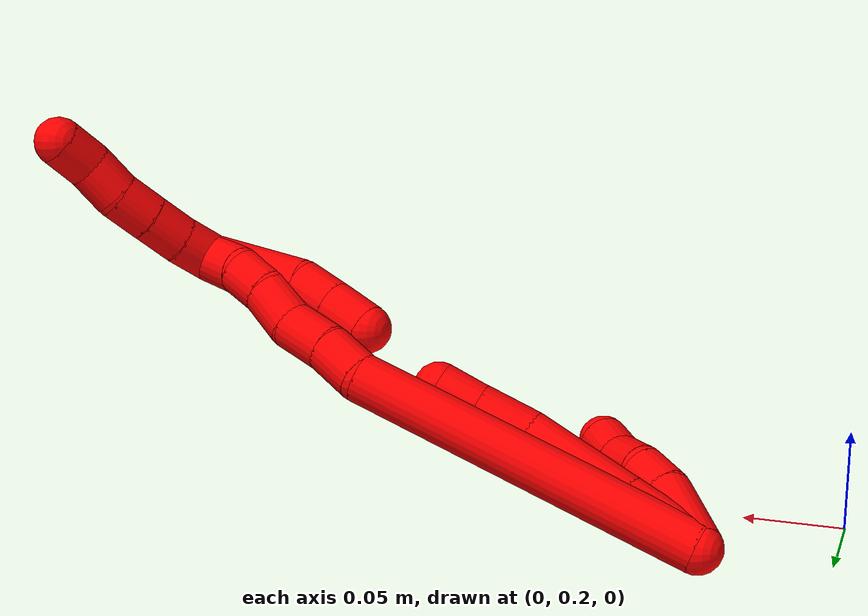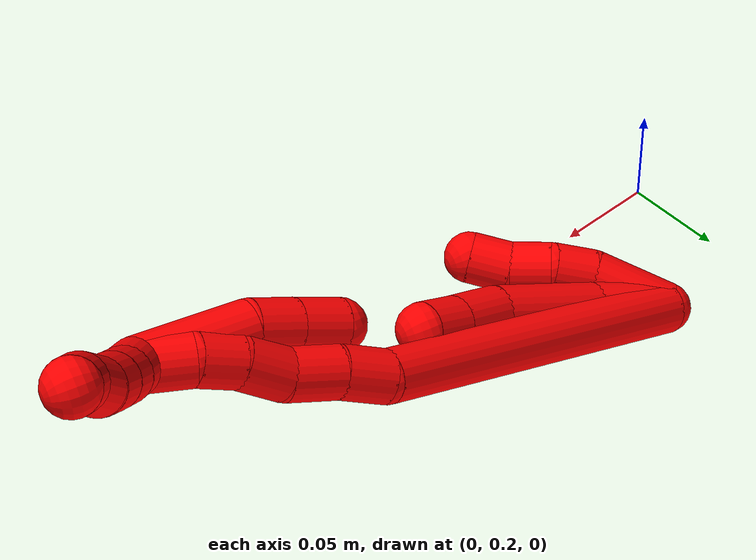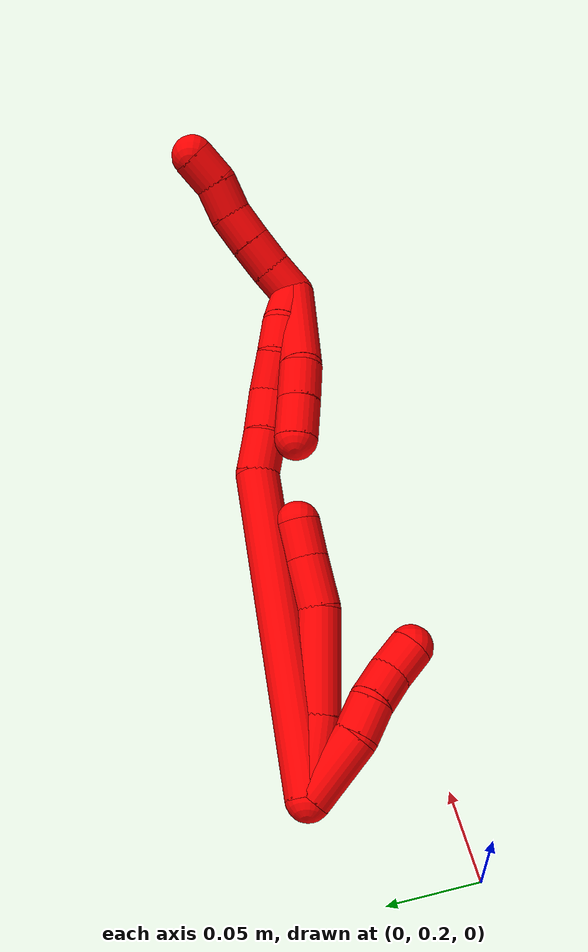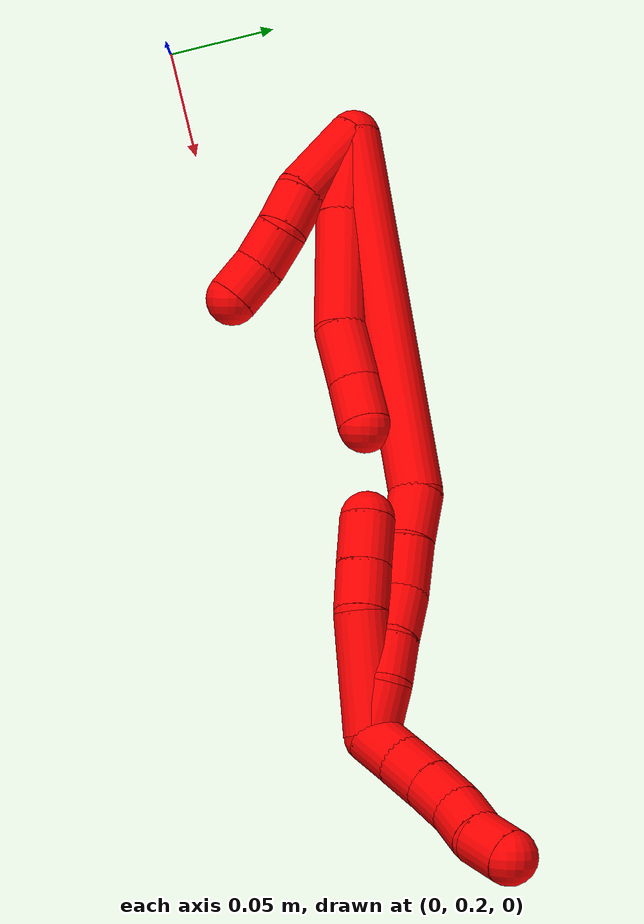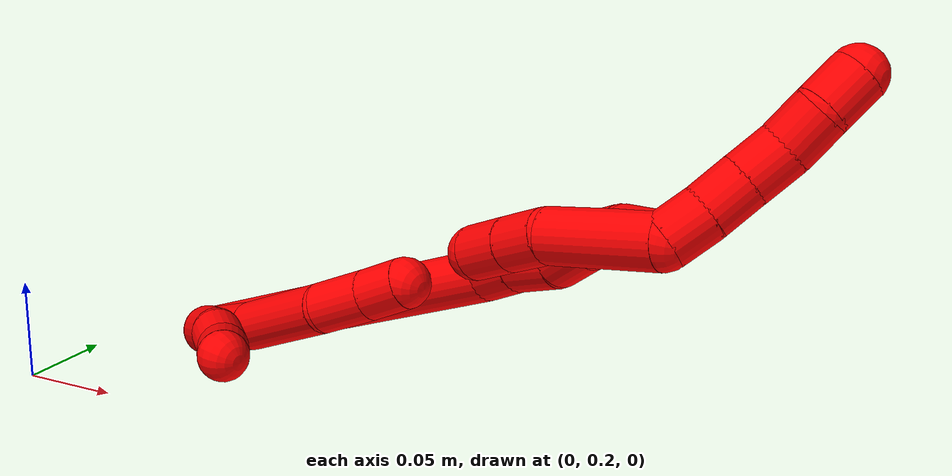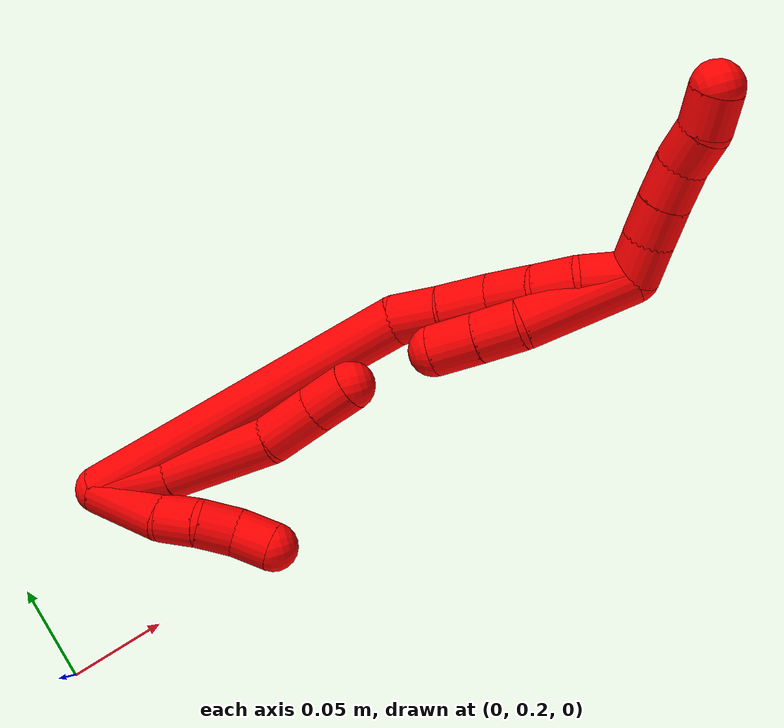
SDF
<sdf version="1.7">
 <world name="default">
  <model name="2">
   <static>0</static>
   <link name="2">
    <collision name="collision-cylinder-e_1_2_8">
     <pose>-0.005489 -0.0058 -0.019425 2.85143 -0.264442 -1.47693</pose>
     <geometry><cylinder><radius>0.0125</radius><length>0.042005</length></cylinder></geometry>
     <surface>
      <friction><ode><mu>1.16</mu><mu2>1.16</mu2><slip1>0</slip1><slip2>0</slip2></ode></friction>
      <contact><ode><kp>1e+06</kp><kd>1</kd><max_vel>0</max_vel><min_depth>0.001</min_depth></ode></contact>
     </surface>
    </collision>
    <visual name="visual-cylinder-e_1_2_8">
     <pose>-0.005489 -0.0058 -0.019425 2.85143 -0.264442 -1.47693</pose>
     <geometry><cylinder><radius>0.0125</radius><length>0.042005</length></cylinder></geometry>
     <material><ambient>1 0 0 1</ambient></material>
    </visual>
    <collision name="collision-cylinder-e_2_8_9">
     <pose>-0.016445 -0.022745 -0.064976 2.73838 -0.190127 -0.873037</pose>
     <geometry><cylinder><radius>0.0125</radius><length>0.057849</length></cylinder></geometry>
     <surface>
      <friction><ode><mu>1.16</mu><mu2>1.16</mu2><slip1>0</slip1><slip2>0</slip2></ode></friction>
      <contact><ode><kp>1e+06</kp><kd>1</kd><max_vel>0</max_vel><min_depth>0.001</min_depth></ode></contact>
     </surface>
    </collision>
    <visual name="visual-cylinder-e_2_8_9">
     <pose>-0.016445 -0.022745 -0.064976 2.73838 -0.190127 -0.873037</pose>
     <geometry><cylinder><radius>0.0125</radius><length>0.057849</length></cylinder></geometry>
     <material><ambient>1 0 0 1</ambient></material>
    </visual>
    <collision name="collision-cylinder-e_3_9_10">
     <pose>-0.021575 -0.041021 -0.103519 2.62028 0.023511 0.088093</pose>
     <geometry><cylinder><radius>0.0125</radius><length>0.028648</length></cylinder></geometry>
     <surface>
      <friction><ode><mu>1.16</mu><mu2>1.16</mu2><slip1>0</slip1><slip2>0</slip2></ode></friction>
      <contact><ode><kp>1e+06</kp><kd>1</kd><max_vel>0</max_vel><min_depth>0.001</min_depth></ode></contact>
     </surface>
    </collision>
    <visual name="visual-cylinder-e_3_9_10">
     <pose>-0.021575 -0.041021 -0.103519 2.62028 0.023511 0.088093</pose>
     <geometry><cylinder><radius>0.0125</radius><length>0.028648</length></cylinder></geometry>
     <material><ambient>1 0 0 1</ambient></material>
    </visual>
    <collision name="collision-cylinder-e_4_10_6">
     <pose>-0.021306 -0.053628 -0.125187 2.60715 -0.006351 -0.023198</pose>
     <geometry><cylinder><radius>0.0125</radius><length>0.021497</length></cylinder></geometry>
     <surface>
      <friction><ode><mu>1.16</mu><mu2>1.16</mu2><slip1>0</slip1><slip2>0</slip2></ode></friction>
      <contact><ode><kp>1e+06</kp><kd>1</kd><max_vel>0</max_vel><min_depth>0.001</min_depth></ode></contact>
     </surface>
    </collision>
    <visual name="visual-cylinder-e_4_10_6">
     <pose>-0.021306 -0.053628 -0.125187 2.60715 -0.006351 -0.023198</pose>
     <geometry><cylinder><radius>0.0125</radius><length>0.021497</length></cylinder></geometry>
     <material><ambient>1 0 0 1</ambient></material>
    </visual>
    <collision name="collision-cylinder-e_1_2_11">
     <pose>-0.014181 -0.000981 -0.013891 3.07108 -0.794458 -2.97384</pose>
     <geometry><cylinder><radius>0.0125</radius><length>0.039751</length></cylinder></geometry>
     <surface>
      <friction><ode><mu>1.16</mu><mu2>1.16</mu2><slip1>0</slip1><slip2>0</slip2></ode></friction>
      <contact><ode><kp>1e+06</kp><kd>1</kd><max_vel>0</max_vel><min_depth>0.001</min_depth></ode></contact>
     </surface>
    </collision>
    <visual name="visual-cylinder-e_1_2_11">
     <pose>-0.014181 -0.000981 -0.013891 3.07108 -0.794458 -2.97384</pose>
     <geometry><cylinder><radius>0.0125</radius><length>0.039751</length></cylinder></geometry>
     <material><ambient>1 0 0 1</ambient></material>
    </visual>
    <collision name="collision-cylinder-e_2_11_12">
     <pose>-0.033428 -0.002728 -0.036492 3.05391 -0.525201 -2.81804</pose>
     <geometry><cylinder><radius>0.0125</radius><length>0.020209</length></cylinder></geometry>
     <surface>
      <friction><ode><mu>1.16</mu><mu2>1.16</mu2><slip1>0</slip1><slip2>0</slip2></ode></friction>
      <contact><ode><kp>1e+06</kp><kd>1</kd><max_vel>0</max_vel><min_depth>0.001</min_depth></ode></contact>
     </surface>
    </collision>
    <visual name="visual-cylinder-e_2_11_12">
     <pose>-0.033428 -0.002728 -0.036492 3.05391 -0.525201 -2.81804</pose>
     <geometry><cylinder><radius>0.0125</radius><length>0.020209</length></cylinder></geometry>
     <material><ambient>1 0 0 1</ambient></material>
    </visual>
    <collision name="collision-cylinder-e_3_12_13">
     <pose>-0.042879 -0.001208 -0.053897 -2.88464 -0.45373 2.12115</pose>
     <geometry><cylinder><radius>0.0125</radius><length>0.020007</length></cylinder></geometry>
     <surface>
      <friction><ode><mu>1.16</mu><mu2>1.16</mu2><slip1>0</slip1><slip2>0</slip2></ode></friction>
      <contact><ode><kp>1e+06</kp><kd>1</kd><max_vel>0</max_vel><min_depth>0.001</min_depth></ode></contact>
     </surface>
    </collision>
    <visual name="visual-cylinder-e_3_12_13">
     <pose>-0.042879 -0.001208 -0.053897 -2.88464 -0.45373 2.12115</pose>
     <geometry><cylinder><radius>0.0125</radius><length>0.020007</length></cylinder></geometry>
     <material><ambient>1 0 0 1</ambient></material>
    </visual>
    <collision name="collision-cylinder-e_4_13_5">
     <pose>-0.053541 0.002148 -0.070325 -3.00389 -0.67727 2.75488</pose>
     <geometry><cylinder><radius>0.0125</radius><length>0.020033</length></cylinder></geometry>
     <surface>
      <friction><ode><mu>1.16</mu><mu2>1.16</mu2><slip1>0</slip1><slip2>0</slip2></ode></friction>
      <contact><ode><kp>1e+06</kp><kd>1</kd><max_vel>0</max_vel><min_depth>0.001</min_depth></ode></contact>
     </surface>
    </collision>
    <visual name="visual-cylinder-e_4_13_5">
     <pose>-0.053541 0.002148 -0.070325 -3.00389 -0.67727 2.75488</pose>
     <geometry><cylinder><radius>0.0125</radius><length>0.020033</length></cylinder></geometry>
     <material><ambient>1 0 0 1</ambient></material>
    </visual>
    <collision name="collision-cylinder-e_1_2_14">
     <pose>-0.001774 -0.038281 -0.082206 2.70578 -0.019562 -0.088292</pose>
     <geometry><cylinder><radius>0.0125</radius><length>0.1814</length></cylinder></geometry>
     <surface>
      <friction><ode><mu>1.16</mu><mu2>1.16</mu2><slip1>0</slip1><slip2>0</slip2></ode></friction>
      <contact><ode><kp>1e+06</kp><kd>1</kd><max_vel>0</max_vel><min_depth>0.001</min_depth></ode></contact>
     </surface>
    </collision>
    <visual name="visual-cylinder-e_1_2_14">
     <pose>-0.001774 -0.038281 -0.082206 2.70578 -0.019562 -0.088292</pose>
     <geometry><cylinder><radius>0.0125</radius><length>0.1814</length></cylinder></geometry>
     <material><ambient>1 0 0 1</ambient></material>
    </visual>
    <collision name="collision-cylinder-e_2_14_15">
     <pose>-0.007729 -0.080646 -0.174975 2.77268 -0.353661 -1.52765</pose>
     <geometry><cylinder><radius>0.0125</radius><length>0.024143</length></cylinder></geometry>
     <surface>
      <friction><ode><mu>1.16</mu><mu2>1.16</mu2><slip1>0</slip1><slip2>0</slip2></ode></friction>
      <contact><ode><kp>1e+06</kp><kd>1</kd><max_vel>0</max_vel><min_depth>0.001</min_depth></ode></contact>
     </surface>
    </collision>
    <visual name="visual-cylinder-e_2_14_15">
     <pose>-0.007729 -0.080646 -0.174975 2.77268 -0.353661 -1.52765</pose>
     <geometry><cylinder><radius>0.0125</radius><length>0.024143</length></cylinder></geometry>
     <material><ambient>1 0 0 1</ambient></material>
    </visual>
    <collision name="collision-cylinder-e_3_15_16">
     <pose>-0.014977 -0.088157 -0.197464 2.8618 -0.242281 -1.42573</pose>
     <geometry><cylinder><radius>0.0125</radius><length>0.025566</length></cylinder></geometry>
     <surface>
      <friction><ode><mu>1.16</mu><mu2>1.16</mu2><slip1>0</slip1><slip2>0</slip2></ode></friction>
      <contact><ode><kp>1e+06</kp><kd>1</kd><max_vel>0</max_vel><min_depth>0.001</min_depth></ode></contact>
     </surface>
    </collision>
    <visual name="visual-cylinder-e_3_15_16">
     <pose>-0.014977 -0.088157 -0.197464 2.8618 -0.242281 -1.42573</pose>
     <geometry><cylinder><radius>0.0125</radius><length>0.025566</length></cylinder></geometry>
     <material><ambient>1 0 0 1</ambient></material>
    </visual>
    <collision name="collision-cylinder-e_4_16_17">
     <pose>-0.023163 -0.096994 -0.218737 2.61683 -0.442708 -1.39487</pose>
     <geometry><cylinder><radius>0.0125</radius><length>0.023903</length></cylinder></geometry>
     <surface>
      <friction><ode><mu>1.16</mu><mu2>1.16</mu2><slip1>0</slip1><slip2>0</slip2></ode></friction>
      <contact><ode><kp>1e+06</kp><kd>1</kd><max_vel>0</max_vel><min_depth>0.001</min_depth></ode></contact>
     </surface>
    </collision>
    <visual name="visual-cylinder-e_4_16_17">
     <pose>-0.023163 -0.096994 -0.218737 2.61683 -0.442708 -1.39487</pose>
     <geometry><cylinder><radius>0.0125</radius><length>0.023903</length></cylinder></geometry>
     <material><ambient>1 0 0 1</ambient></material>
    </visual>
    <collision name="collision-cylinder-e_5_17_18">
     <pose>-0.031471 -0.105638 -0.237318 2.80486 -0.314984 -1.50288</pose>
     <geometry><cylinder><radius>0.0125</radius><length>0.020582</length></cylinder></geometry>
     <surface>
      <friction><ode><mu>1.16</mu><mu2>1.16</mu2><slip1>0</slip1><slip2>0</slip2></ode></friction>
      <contact><ode><kp>1e+06</kp><kd>1</kd><max_vel>0</max_vel><min_depth>0.001</min_depth></ode></contact>
     </surface>
    </collision>
    <visual name="visual-cylinder-e_5_17_18">
     <pose>-0.031471 -0.105638 -0.237318 2.80486 -0.314984 -1.50288</pose>
     <geometry><cylinder><radius>0.0125</radius><length>0.020582</length></cylinder></geometry>
     <material><ambient>1 0 0 1</ambient></material>
    </visual>
    <collision name="collision-cylinder-e_6_18_1">
     <pose>-0.037796 -0.109275 -0.25834 3.10726 -0.259967 -2.88043</pose>
     <geometry><cylinder><radius>0.0125</radius><length>0.024407</length></cylinder></geometry>
     <surface>
      <friction><ode><mu>1.16</mu><mu2>1.16</mu2><slip1>0</slip1><slip2>0</slip2></ode></friction>
      <contact><ode><kp>1e+06</kp><kd>1</kd><max_vel>0</max_vel><min_depth>0.001</min_depth></ode></contact>
     </surface>
    </collision>
    <visual name="visual-cylinder-e_6_18_1">
     <pose>-0.037796 -0.109275 -0.25834 3.10726 -0.259967 -2.88043</pose>
     <geometry><cylinder><radius>0.0125</radius><length>0.024407</length></cylinder></geometry>
     <material><ambient>1 0 0 1</ambient></material>
    </visual>
    <collision name="collision-cylinder-e_1_1_19">
     <pose>-0.0413 -0.103947 -0.243217 -0.209925 -0.013348 0.001406</pose>
     <geometry><cylinder><radius>0.0125</radius><length>0.055033</length></cylinder></geometry>
     <surface>
      <friction><ode><mu>1.16</mu><mu2>1.16</mu2><slip1>0</slip1><slip2>0</slip2></ode></friction>
      <contact><ode><kp>1e+06</kp><kd>1</kd><max_vel>0</max_vel><min_depth>0.001</min_depth></ode></contact>
     </surface>
    </collision>
    <visual name="visual-cylinder-e_1_1_19">
     <pose>-0.0413 -0.103947 -0.243217 -0.209925 -0.013348 0.001406</pose>
     <geometry><cylinder><radius>0.0125</radius><length>0.055033</length></cylinder></geometry>
     <material><ambient>1 0 0 1</ambient></material>
    </visual>
    <collision name="collision-cylinder-e_2_19_20">
     <pose>-0.039297 -0.094371 -0.206308 -0.36684 0.217845 -0.040566</pose>
     <geometry><cylinder><radius>0.0125</radius><length>0.021941</length></cylinder></geometry>
     <surface>
      <friction><ode><mu>1.16</mu><mu2>1.16</mu2><slip1>0</slip1><slip2>0</slip2></ode></friction>
      <contact><ode><kp>1e+06</kp><kd>1</kd><max_vel>0</max_vel><min_depth>0.001</min_depth></ode></contact>
     </surface>
    </collision>
    <visual name="visual-cylinder-e_2_19_20">
     <pose>-0.039297 -0.094371 -0.206308 -0.36684 0.217845 -0.040566</pose>
     <geometry><cylinder><radius>0.0125</radius><length>0.021941</length></cylinder></geometry>
     <material><ambient>1 0 0 1</ambient></material>
    </visual>
    <collision name="collision-cylinder-e_3_20_4">
     <pose>-0.034213 -0.086519 -0.185864 -0.366589 0.237899 -0.044302</pose>
     <geometry><cylinder><radius>0.0125</radius><length>0.023026</length></cylinder></geometry>
     <surface>
      <friction><ode><mu>1.16</mu><mu2>1.16</mu2><slip1>0</slip1><slip2>0</slip2></ode></friction>
      <contact><ode><kp>1e+06</kp><kd>1</kd><max_vel>0</max_vel><min_depth>0.001</min_depth></ode></contact>
     </surface>
    </collision>
    <visual name="visual-cylinder-e_3_20_4">
     <pose>-0.034213 -0.086519 -0.185864 -0.366589 0.237899 -0.044302</pose>
     <geometry><cylinder><radius>0.0125</radius><length>0.023026</length></cylinder></geometry>
     <material><ambient>1 0 0 1</ambient></material>
    </visual>
    <collision name="collision-cylinder-e_1_1_21">
     <pose>-0.037753 -0.117951 -0.274761 2.08155 0.323663 0.54347</pose>
     <geometry><cylinder><radius>0.0125</radius><length>0.02</length></cylinder></geometry>
     <surface>
      <friction><ode><mu>1.16</mu><mu2>1.16</mu2><slip1>0</slip1><slip2>0</slip2></ode></friction>
      <contact><ode><kp>1e+06</kp><kd>1</kd><max_vel>0</max_vel><min_depth>0.001</min_depth></ode></contact>
     </surface>
    </collision>
    <visual name="visual-cylinder-e_1_1_21">
     <pose>-0.037753 -0.117951 -0.274761 2.08155 0.323663 0.54347</pose>
     <geometry><cylinder><radius>0.0125</radius><length>0.02</length></cylinder></geometry>
     <material><ambient>1 0 0 1</ambient></material>
    </visual>
    <collision name="collision-cylinder-e_2_21_22">
     <pose>-0.03211 -0.134892 -0.283728 2.03423 0.248844 0.399243</pose>
     <geometry><cylinder><radius>0.0125</radius><length>0.02</length></cylinder></geometry>
     <surface>
      <friction><ode><mu>1.16</mu><mu2>1.16</mu2><slip1>0</slip1><slip2>0</slip2></ode></friction>
      <contact><ode><kp>1e+06</kp><kd>1</kd><max_vel>0</max_vel><min_depth>0.001</min_depth></ode></contact>
     </surface>
    </collision>
    <visual name="visual-cylinder-e_2_21_22">
     <pose>-0.03211 -0.134892 -0.283728 2.03423 0.248844 0.399243</pose>
     <geometry><cylinder><radius>0.0125</radius><length>0.02</length></cylinder></geometry>
     <material><ambient>1 0 0 1</ambient></material>
    </visual>
    <collision name="collision-cylinder-e_3_22_23">
     <pose>-0.027397 -0.152165 -0.292634 2.05938 0.226951 0.374843</pose>
     <geometry><cylinder><radius>0.0125</radius><length>0.02</length></cylinder></geometry>
     <surface>
      <friction><ode><mu>1.16</mu><mu2>1.16</mu2><slip1>0</slip1><slip2>0</slip2></ode></friction>
      <contact><ode><kp>1e+06</kp><kd>1</kd><max_vel>0</max_vel><min_depth>0.001</min_depth></ode></contact>
     </surface>
    </collision>
    <visual name="visual-cylinder-e_3_22_23">
     <pose>-0.027397 -0.152165 -0.292634 2.05938 0.226951 0.374843</pose>
     <geometry><cylinder><radius>0.0125</radius><length>0.02</length></cylinder></geometry>
     <material><ambient>1 0 0 1</ambient></material>
    </visual>
    <collision name="collision-cylinder-e_4_23_24">
     <pose>-0.025077 -0.16965 -0.301802 2.04813 0.006953 0.011424</pose>
     <geometry><cylinder><radius>0.0125</radius><length>0.02</length></cylinder></geometry>
     <surface>
      <friction><ode><mu>1.16</mu><mu2>1.16</mu2><slip1>0</slip1><slip2>0</slip2></ode></friction>
      <contact><ode><kp>1e+06</kp><kd>1</kd><max_vel>0</max_vel><min_depth>0.001</min_depth></ode></contact>
     </surface>
    </collision>
    <visual name="visual-cylinder-e_4_23_24">
     <pose>-0.025077 -0.16965 -0.301802 2.04813 0.006953 0.011424</pose>
     <geometry><cylinder><radius>0.0125</radius><length>0.02</length></cylinder></geometry>
     <material><ambient>1 0 0 1</ambient></material>
    </visual>
    <collision name="collision-cylinder-e_5_24_3">
     <pose>-0.022382 -0.18763 -0.309611 1.91057 0.265635 0.373461</pose>
     <geometry><cylinder><radius>0.0125</radius><length>0.02</length></cylinder></geometry>
     <surface>
      <friction><ode><mu>1.16</mu><mu2>1.16</mu2><slip1>0</slip1><slip2>0</slip2></ode></friction>
      <contact><ode><kp>1e+06</kp><kd>1</kd><max_vel>0</max_vel><min_depth>0.001</min_depth></ode></contact>
     </surface>
    </collision>
    <visual name="visual-cylinder-e_5_24_3">
     <pose>-0.022382 -0.18763 -0.309611 1.91057 0.265635 0.373461</pose>
     <geometry><cylinder><radius>0.0125</radius><length>0.02</length></cylinder></geometry>
     <material><ambient>1 0 0 1</ambient></material>
    </visual>
    <collision name="collision-sphere-3">
     <pose>-0.019757 -0.196728 -0.312827 0 -0 0</pose>
     <geometry><sphere><radius>0.0125</radius></sphere></geometry>
     <surface>
      <friction><ode><mu>1.16</mu><mu2>1.16</mu2><slip1>0</slip1><slip2>0</slip2></ode></friction>
      <contact><ode><kp>1e+06</kp><kd>1</kd><max_vel>0</max_vel><min_depth>0.001</min_depth></ode></contact>
     </surface>
    </collision>
    <visual name="visual-sphere-3">
     <pose>-0.019757 -0.196728 -0.312827 0 -0 0</pose>
     <geometry><sphere><radius>0.0125</radius></sphere></geometry>
     <material><ambient>1 0 0 1</ambient></material>
    </visual>
    <collision name="collision-sphere-24">
     <pose>-0.025007 -0.178532 -0.306395 0 -0 0</pose>
     <geometry><sphere><radius>0.0125</radius></sphere></geometry>
     <surface>
      <friction><ode><mu>1.16</mu><mu2>1.16</mu2><slip1>0</slip1><slip2>0</slip2></ode></friction>
      <contact><ode><kp>1e+06</kp><kd>1</kd><max_vel>0</max_vel><min_depth>0.001</min_depth></ode></contact>
     </surface>
    </collision>
    <visual name="visual-sphere-24">
     <pose>-0.025007 -0.178532 -0.306395 0 -0 0</pose>
     <geometry><sphere><radius>0.0125</radius></sphere></geometry>
     <material><ambient>1 0 0 1</ambient></material>
    </visual>
    <collision name="collision-sphere-23">
     <pose>-0.025147 -0.160768 -0.297208 0 -0 0</pose>
     <geometry><sphere><radius>0.0125</radius></sphere></geometry>
     <surface>
      <friction><ode><mu>1.16</mu><mu2>1.16</mu2><slip1>0</slip1><slip2>0</slip2></ode></friction>
      <contact><ode><kp>1e+06</kp><kd>1</kd><max_vel>0</max_vel><min_depth>0.001</min_depth></ode></contact>
     </surface>
    </collision>
    <visual name="visual-sphere-23">
     <pose>-0.025147 -0.160768 -0.297208 0 -0 0</pose>
     <geometry><sphere><radius>0.0125</radius></sphere></geometry>
     <material><ambient>1 0 0 1</ambient></material>
    </visual>
    <collision name="collision-sphere-22">
     <pose>-0.029647 -0.143561 -0.288061 0 -0 0</pose>
     <geometry><sphere><radius>0.0125</radius></sphere></geometry>
     <surface>
      <friction><ode><mu>1.16</mu><mu2>1.16</mu2><slip1>0</slip1><slip2>0</slip2></ode></friction>
      <contact><ode><kp>1e+06</kp><kd>1</kd><max_vel>0</max_vel><min_depth>0.001</min_depth></ode></contact>
     </surface>
    </collision>
    <visual name="visual-sphere-22">
     <pose>-0.029647 -0.143561 -0.288061 0 -0 0</pose>
     <geometry><sphere><radius>0.0125</radius></sphere></geometry>
     <material><ambient>1 0 0 1</ambient></material>
    </visual>
    <collision name="collision-sphere-21">
     <pose>-0.034572 -0.126222 -0.279396 0 -0 0</pose>
     <geometry><sphere><radius>0.0125</radius></sphere></geometry>
     <surface>
      <friction><ode><mu>1.16</mu><mu2>1.16</mu2><slip1>0</slip1><slip2>0</slip2></ode></friction>
      <contact><ode><kp>1e+06</kp><kd>1</kd><max_vel>0</max_vel><min_depth>0.001</min_depth></ode></contact>
     </surface>
    </collision>
    <visual name="visual-sphere-21">
     <pose>-0.034572 -0.126222 -0.279396 0 -0 0</pose>
     <geometry><sphere><radius>0.0125</radius></sphere></geometry>
     <material><ambient>1 0 0 1</ambient></material>
    </visual>
    <collision name="collision-sphere-4">
     <pose>-0.031499 -0.082509 -0.175419 0 -0 0</pose>
     <geometry><sphere><radius>0.0125</radius></sphere></geometry>
     <surface>
      <friction><ode><mu>1.16</mu><mu2>1.16</mu2><slip1>0</slip1><slip2>0</slip2></ode></friction>
      <contact><ode><kp>1e+06</kp><kd>1</kd><max_vel>0</max_vel><min_depth>0.001</min_depth></ode></contact>
     </surface>
    </collision>
    <visual name="visual-sphere-4">
     <pose>-0.031499 -0.082509 -0.175419 0 -0 0</pose>
     <geometry><sphere><radius>0.0125</radius></sphere></geometry>
     <material><ambient>1 0 0 1</ambient></material>
    </visual>
    <collision name="collision-sphere-20">
     <pose>-0.036926 -0.09053 -0.196309 0 -0 0</pose>
     <geometry><sphere><radius>0.0125</radius></sphere></geometry>
     <surface>
      <friction><ode><mu>1.16</mu><mu2>1.16</mu2><slip1>0</slip1><slip2>0</slip2></ode></friction>
      <contact><ode><kp>1e+06</kp><kd>1</kd><max_vel>0</max_vel><min_depth>0.001</min_depth></ode></contact>
     </surface>
    </collision>
    <visual name="visual-sphere-20">
     <pose>-0.036926 -0.09053 -0.196309 0 -0 0</pose>
     <geometry><sphere><radius>0.0125</radius></sphere></geometry>
     <material><ambient>1 0 0 1</ambient></material>
    </visual>
    <collision name="collision-sphere-11">
     <pose>-0.028361 -0.001962 -0.027783 0 -0 0</pose>
     <geometry><sphere><radius>0.0125</radius></sphere></geometry>
     <surface>
      <friction><ode><mu>1.16</mu><mu2>1.16</mu2><slip1>0</slip1><slip2>0</slip2></ode></friction>
      <contact><ode><kp>1e+06</kp><kd>1</kd><max_vel>0</max_vel><min_depth>0.001</min_depth></ode></contact>
     </surface>
    </collision>
    <visual name="visual-sphere-11">
     <pose>-0.028361 -0.001962 -0.027783 0 -0 0</pose>
     <geometry><sphere><radius>0.0125</radius></sphere></geometry>
     <material><ambient>1 0 0 1</ambient></material>
    </visual>
    <collision name="collision-sphere-6">
     <pose>-0.021375 -0.059103 -0.134437 0 -0 0</pose>
     <geometry><sphere><radius>0.0125</radius></sphere></geometry>
     <surface>
      <friction><ode><mu>1.16</mu><mu2>1.16</mu2><slip1>0</slip1><slip2>0</slip2></ode></friction>
      <contact><ode><kp>1e+06</kp><kd>1</kd><max_vel>0</max_vel><min_depth>0.001</min_depth></ode></contact>
     </surface>
    </collision>
    <visual name="visual-sphere-6">
     <pose>-0.021375 -0.059103 -0.134437 0 -0 0</pose>
     <geometry><sphere><radius>0.0125</radius></sphere></geometry>
     <material><ambient>1 0 0 1</ambient></material>
    </visual>
    <collision name="collision-sphere-10">
     <pose>-0.021238 -0.048153 -0.115938 0 -0 0</pose>
     <geometry><sphere><radius>0.0125</radius></sphere></geometry>
     <surface>
      <friction><ode><mu>1.16</mu><mu2>1.16</mu2><slip1>0</slip1><slip2>0</slip2></ode></friction>
      <contact><ode><kp>1e+06</kp><kd>1</kd><max_vel>0</max_vel><min_depth>0.001</min_depth></ode></contact>
     </surface>
    </collision>
    <visual name="visual-sphere-10">
     <pose>-0.021238 -0.048153 -0.115938 0 -0 0</pose>
     <geometry><sphere><radius>0.0125</radius></sphere></geometry>
     <material><ambient>1 0 0 1</ambient></material>
    </visual>
    <collision name="collision-sphere-9">
     <pose>-0.021911 -0.03389 -0.091101 0 -0 0</pose>
     <geometry><sphere><radius>0.0125</radius></sphere></geometry>
     <surface>
      <friction><ode><mu>1.16</mu><mu2>1.16</mu2><slip1>0</slip1><slip2>0</slip2></ode></friction>
      <contact><ode><kp>1e+06</kp><kd>1</kd><max_vel>0</max_vel><min_depth>0.001</min_depth></ode></contact>
     </surface>
    </collision>
    <visual name="visual-sphere-9">
     <pose>-0.021911 -0.03389 -0.091101 0 -0 0</pose>
     <geometry><sphere><radius>0.0125</radius></sphere></geometry>
     <material><ambient>1 0 0 1</ambient></material>
    </visual>
    <collision name="collision-sphere-2">
     <geometry><sphere><radius>0.0125</radius></sphere></geometry>
     <surface>
      <friction><ode><mu>1.16</mu><mu2>1.16</mu2><slip1>0</slip1><slip2>0</slip2></ode></friction>
      <contact><ode><kp>1e+06</kp><kd>1</kd><max_vel>0</max_vel><min_depth>0.001</min_depth></ode></contact>
     </surface>
    </collision>
    <visual name="visual-sphere-2">
     <geometry><sphere><radius>0.0125</radius></sphere></geometry>
     <material><ambient>1 0 0 1</ambient></material>
    </visual>
    <collision name="collision-sphere-19">
     <pose>-0.041668 -0.098213 -0.216307 0 -0 0</pose>
     <geometry><sphere><radius>0.0125</radius></sphere></geometry>
     <surface>
      <friction><ode><mu>1.16</mu><mu2>1.16</mu2><slip1>0</slip1><slip2>0</slip2></ode></friction>
      <contact><ode><kp>1e+06</kp><kd>1</kd><max_vel>0</max_vel><min_depth>0.001</min_depth></ode></contact>
     </surface>
    </collision>
    <visual name="visual-sphere-19">
     <pose>-0.041668 -0.098213 -0.216307 0 -0 0</pose>
     <geometry><sphere><radius>0.0125</radius></sphere></geometry>
     <material><ambient>1 0 0 1</ambient></material>
    </visual>
    <collision name="collision-sphere-8">
     <pose>-0.010979 -0.0116 -0.03885 0 -0 0</pose>
     <geometry><sphere><radius>0.0125</radius></sphere></geometry>
     <surface>
      <friction><ode><mu>1.16</mu><mu2>1.16</mu2><slip1>0</slip1><slip2>0</slip2></ode></friction>
      <contact><ode><kp>1e+06</kp><kd>1</kd><max_vel>0</max_vel><min_depth>0.001</min_depth></ode></contact>
     </surface>
    </collision>
    <visual name="visual-sphere-8">
     <pose>-0.010979 -0.0116 -0.03885 0 -0 0</pose>
     <geometry><sphere><radius>0.0125</radius></sphere></geometry>
     <material><ambient>1 0 0 1</ambient></material>
    </visual>
    <collision name="collision-sphere-12">
     <pose>-0.038494 -0.003494 -0.045201 0 -0 0</pose>
     <geometry><sphere><radius>0.0125</radius></sphere></geometry>
     <surface>
      <friction><ode><mu>1.16</mu><mu2>1.16</mu2><slip1>0</slip1><slip2>0</slip2></ode></friction>
      <contact><ode><kp>1e+06</kp><kd>1</kd><max_vel>0</max_vel><min_depth>0.001</min_depth></ode></contact>
     </surface>
    </collision>
    <visual name="visual-sphere-12">
     <pose>-0.038494 -0.003494 -0.045201 0 -0 0</pose>
     <geometry><sphere><radius>0.0125</radius></sphere></geometry>
     <material><ambient>1 0 0 1</ambient></material>
    </visual>
    <collision name="collision-sphere-13">
     <pose>-0.047263 0.001077 -0.062593 0 -0 0</pose>
     <geometry><sphere><radius>0.0125</radius></sphere></geometry>
     <surface>
      <friction><ode><mu>1.16</mu><mu2>1.16</mu2><slip1>0</slip1><slip2>0</slip2></ode></friction>
      <contact><ode><kp>1e+06</kp><kd>1</kd><max_vel>0</max_vel><min_depth>0.001</min_depth></ode></contact>
     </surface>
    </collision>
    <visual name="visual-sphere-13">
     <pose>-0.047263 0.001077 -0.062593 0 -0 0</pose>
     <geometry><sphere><radius>0.0125</radius></sphere></geometry>
     <material><ambient>1 0 0 1</ambient></material>
    </visual>
    <collision name="collision-sphere-5">
     <pose>-0.059818 0.00322 -0.078057 0 -0 0</pose>
     <geometry><sphere><radius>0.0125</radius></sphere></geometry>
     <surface>
      <friction><ode><mu>1.16</mu><mu2>1.16</mu2><slip1>0</slip1><slip2>0</slip2></ode></friction>
      <contact><ode><kp>1e+06</kp><kd>1</kd><max_vel>0</max_vel><min_depth>0.001</min_depth></ode></contact>
     </surface>
    </collision>
    <visual name="visual-sphere-5">
     <pose>-0.059818 0.00322 -0.078057 0 -0 0</pose>
     <geometry><sphere><radius>0.0125</radius></sphere></geometry>
     <material><ambient>1 0 0 1</ambient></material>
    </visual>
    <collision name="collision-sphere-14">
     <pose>-0.003548 -0.076563 -0.164412 0 -0 0</pose>
     <geometry><sphere><radius>0.0125</radius></sphere></geometry>
     <surface>
      <friction><ode><mu>1.16</mu><mu2>1.16</mu2><slip1>0</slip1><slip2>0</slip2></ode></friction>
      <contact><ode><kp>1e+06</kp><kd>1</kd><max_vel>0</max_vel><min_depth>0.001</min_depth></ode></contact>
     </surface>
    </collision>
    <visual name="visual-sphere-14">
     <pose>-0.003548 -0.076563 -0.164412 0 -0 0</pose>
     <geometry><sphere><radius>0.0125</radius></sphere></geometry>
     <material><ambient>1 0 0 1</ambient></material>
    </visual>
    <collision name="collision-sphere-15">
     <pose>-0.01191 -0.08473 -0.185537 0 -0 0</pose>
     <geometry><sphere><radius>0.0125</radius></sphere></geometry>
     <surface>
      <friction><ode><mu>1.16</mu><mu2>1.16</mu2><slip1>0</slip1><slip2>0</slip2></ode></friction>
      <contact><ode><kp>1e+06</kp><kd>1</kd><max_vel>0</max_vel><min_depth>0.001</min_depth></ode></contact>
     </surface>
    </collision>
    <visual name="visual-sphere-15">
     <pose>-0.01191 -0.08473 -0.185537 0 -0 0</pose>
     <geometry><sphere><radius>0.0125</radius></sphere></geometry>
     <material><ambient>1 0 0 1</ambient></material>
    </visual>
    <collision name="collision-sphere-16">
     <pose>-0.018044 -0.091584 -0.209391 0 -0 0</pose>
     <geometry><sphere><radius>0.0125</radius></sphere></geometry>
     <surface>
      <friction><ode><mu>1.16</mu><mu2>1.16</mu2><slip1>0</slip1><slip2>0</slip2></ode></friction>
      <contact><ode><kp>1e+06</kp><kd>1</kd><max_vel>0</max_vel><min_depth>0.001</min_depth></ode></contact>
     </surface>
    </collision>
    <visual name="visual-sphere-16">
     <pose>-0.018044 -0.091584 -0.209391 0 -0 0</pose>
     <geometry><sphere><radius>0.0125</radius></sphere></geometry>
     <material><ambient>1 0 0 1</ambient></material>
    </visual>
    <collision name="collision-sphere-17">
     <pose>-0.028283 -0.102405 -0.228083 0 -0 0</pose>
     <geometry><sphere><radius>0.0125</radius></sphere></geometry>
     <surface>
      <friction><ode><mu>1.16</mu><mu2>1.16</mu2><slip1>0</slip1><slip2>0</slip2></ode></friction>
      <contact><ode><kp>1e+06</kp><kd>1</kd><max_vel>0</max_vel><min_depth>0.001</min_depth></ode></contact>
     </surface>
    </collision>
    <visual name="visual-sphere-17">
     <pose>-0.028283 -0.102405 -0.228083 0 -0 0</pose>
     <geometry><sphere><radius>0.0125</radius></sphere></geometry>
     <material><ambient>1 0 0 1</ambient></material>
    </visual>
    <collision name="collision-sphere-18">
     <pose>-0.034659 -0.108871 -0.246553 0 -0 0</pose>
     <geometry><sphere><radius>0.0125</radius></sphere></geometry>
     <surface>
      <friction><ode><mu>1.16</mu><mu2>1.16</mu2><slip1>0</slip1><slip2>0</slip2></ode></friction>
      <contact><ode><kp>1e+06</kp><kd>1</kd><max_vel>0</max_vel><min_depth>0.001</min_depth></ode></contact>
     </surface>
    </collision>
    <visual name="visual-sphere-18">
     <pose>-0.034659 -0.108871 -0.246553 0 -0 0</pose>
     <geometry><sphere><radius>0.0125</radius></sphere></geometry>
     <material><ambient>1 0 0 1</ambient></material>
    </visual>
    <collision name="collision-sphere-1">
     <pose>-0.040933 -0.10968 -0.270127 0 -0 0</pose>
     <geometry><sphere><radius>0.0125</radius></sphere></geometry>
     <surface>
      <friction><ode><mu>1.16</mu><mu2>1.16</mu2><slip1>0</slip1><slip2>0</slip2></ode></friction>
      <contact><ode><kp>1e+06</kp><kd>1</kd><max_vel>0</max_vel><min_depth>0.001</min_depth></ode></contact>
     </surface>
    </collision>
    <visual name="visual-sphere-1">
     <pose>-0.040933 -0.10968 -0.270127 0 -0 0</pose>
     <geometry><sphere><radius>0.0125</radius></sphere></geometry>
     <material><ambient>1 0 0 1</ambient></material>
    </visual>
    <inertial>
     <pose>-0.020347 -0.063062 -0.141405 0 -0 0</pose>
     <mass>0.75</mass>
     <inertia>
      <ixx>0.000458</ixx>
      <ixy>0</ixy>
      <ixz>0</ixz>
      <iyy>-0.000529</iyy>
      <iyz>0</iyz>
      <izz>0.000219</izz>
     </inertia>
    </inertial>
   </link>
   <pose>0.059667 0.274686 0.011483 -1.52182 0.488611 1.32479</pose>
  </model>
 </world>
</sdf>
